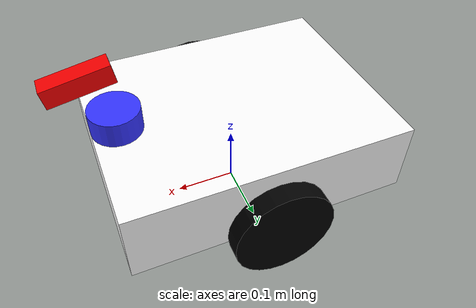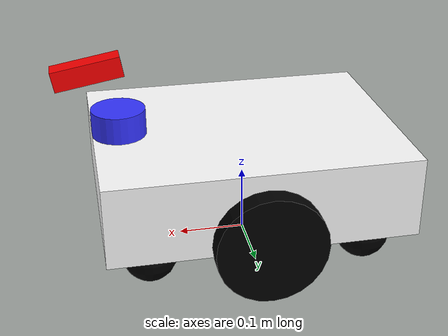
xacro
<?xml version="1.0"?>
<robot xmlns:xacro="http://www.ros.org/wiki/xacro" name="my_robot">

  <xacro:include filename="properties.urdf.xacro" />
  <xacro:include filename="materials.urdf.xacro" />
  <xacro:include filename="macros.urdf.xacro" />

  <xacro:include filename="base.urdf.xacro" />
  <xacro:include filename="wheels.urdf.xacro" />
  <xacro:include filename="sensors.urdf.xacro" />

  <xacro:include filename="gazebo.urdf.xacro" />

</robot>

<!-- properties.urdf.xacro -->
<robot xmlns:xacro="http://www.ros.org/wiki/xacro">

  <!-- BASE KHUNG XE -->
  <xacro:property name="base_length" value="0.45" />
  <xacro:property name="base_width" value="0.35" />
  <xacro:property name="base_height" value="0.12" />
  <xacro:property name="base_mass" value="5.0" />

  <!-- 2 BÁNH CHỦ ĐỘNG (NẰM NGAY GIỮA: X = 0) -->
  <xacro:property name="wheel_radius" value="0.08" />
  <xacro:property name="wheel_thickness" value="0.03" />
  <xacro:property name="wheel_mass" value="0.5" />
  <xacro:property name="wheel_offset_x" value="0.0" />
  <xacro:property name="wheel_offset_y" value="${base_width/2 + wheel_thickness/2 + 0.005}" />
  <xacro:property name="wheel_offset_z" value="-0.04" />

  <!-- 4 BÁNH CASTER WHEEL (2 TRƯỚC, 2 SAU) -->
  <xacro:property name="caster_radius" value="0.04" />
  <xacro:property name="caster_mass" value="0.1" />
  <xacro:property name="caster_offset_x" value="0.16" />
  <xacro:property name="caster_offset_y" value="${base_width/2 - caster_radius - 0.02}" />
  <xacro:property name="caster_offset_z" value="-0.08" />

  <!-- CẢM BIẾN -->
  <xacro:property name="lidar_radius" value="0.04" />
  <xacro:property name="lidar_length" value="0.04" />
  <xacro:property name="camera_size" value="0.03" />

</robot>

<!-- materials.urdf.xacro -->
<robot xmlns:xacro="http://www.ros.org/wiki/xacro">
  <material name="white">
    <color rgba="1 1 1 1"/>
  </material>

  <material name="black">
    <color rgba="0 0 0 1"/>
  </material>

  <material name="blue">
    <color rgba="0.2 0.2 1 1"/>
  </material>

  <material name="red">
    <color rgba="1 0 0 1"/>
  </material>
</robot>

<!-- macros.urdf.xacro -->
<robot xmlns:xacro="http://www.ros.org/wiki/xacro">

<!-- This file contains macros for defining inertial properties of different shapes -->

  <!-- BASE -->
  <xacro:macro name="inertial_box" params="mass x y z *origin">
    <inertial>
      <xacro:insert_block name="origin" />
      <mass value="${mass}" />
      <inertia ixx="${(1/12) * mass * (y*y + z*z)}" ixy="0.0" ixz="0.0"
               iyy="${(1/12) * mass * (x*x + z*z)}" iyz="0.0"
               izz="${(1/12) * mass * (x*x + y*y)}" />
    </inertial>
  </xacro:macro>

  <!-- CYLINDER WHEEL -->
  <xacro:macro name="inertial_cylinder" params="mass radius length *origin">
    <inertial>
      <xacro:insert_block name="origin" />
      <mass value="${mass}" />
      <inertia ixx="${(1/12) * mass * (3*radius*radius + length*length)}" ixy="0.0" ixz="0.0"
               iyy="${(1/12) * mass * (3*radius*radius + length*length)}" iyz="0.0"
               izz="${(1/2) * mass * (radius*radius)}" />
    </inertial>
  </xacro:macro>

  <!-- CASTER WHEEL -->
  <xacro:macro name="inertial_sphere" params="mass radius *origin">
    <inertial>
      <xacro:insert_block name="origin" />
      <mass value="${mass}" />
      <inertia ixx="${(2/5) * mass * (radius*radius)}" ixy="0.0" ixz="0.0"
               iyy="${(2/5) * mass * (radius*radius)}" iyz="0.0"
               izz="${(2/5) * mass * (radius*radius)}" />
    </inertial>
  </xacro:macro>

</robot>

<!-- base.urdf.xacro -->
<robot xmlns:xacro="http://www.ros.org/wiki/xacro">

  <link name="base_footprint"/>

  <!-- Nâng base_link lên 0.12m so với mặt sàn tiếp đất -->
  <joint name="base_joint" type="fixed">
    <parent link="base_footprint"/>
    <child link="base_link"/>
    <origin xyz="0 0 0.12" rpy="0 0 0"/>
  </joint>

  <link name="base_link">
    <visual>
      <origin xyz="0 0 0" rpy="0 0 0"/>
      <geometry>
        <box size="${base_length} ${base_width} ${base_height}"/>
      </geometry>
      <material name="white"/>
    </visual>
    <collision>
      <origin xyz="0 0 0" rpy="0 0 0"/>
      <geometry>
        <box size="${base_length} ${base_width} ${base_height}"/>
      </geometry>
    </collision>
    <xacro:inertial_box mass="${base_mass}" x="${base_length}" y="${base_width}" z="${base_height}">
      <origin xyz="0 0 0" rpy="0 0 0"/>
    </xacro:inertial_box>
  </link>

  <gazebo reference="base_link">
    <material>Gazebo/White</material>
  </gazebo>

</robot>

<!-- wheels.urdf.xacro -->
<robot xmlns:xacro="http://www.ros.org/wiki/xacro">

  <!-- ==================== MACRO BÁNH CHỦ ĐỘNG ==================== -->
  <xacro:macro name="wheel" params="prefix offset_y">
    <link name="${prefix}_wheel">
      <visual>
        <geometry>
          <cylinder radius="${wheel_radius}" length="${wheel_thickness}"/>
        </geometry>
        <material name="black"/>
      </visual>
      <collision>
        <geometry>
          <cylinder radius="${wheel_radius}" length="${wheel_thickness}"/>
        </geometry>
      </collision>
      <xacro:inertial_cylinder mass="${wheel_mass}" radius="${wheel_radius}" length="${wheel_thickness}">
        <origin xyz="0 0 0" rpy="0 0 0"/>
      </xacro:inertial_cylinder>
    </link>

    <!-- Cố định bánh xe nằm ngay tâm robot -->
    <joint name="${prefix}_wheel_joint" type="continuous">
      <parent link="base_link"/>
      <child link="${prefix}_wheel"/>
      <origin xyz="0.0 ${offset_y} ${wheel_offset_z}" rpy="${-pi/2} 0 0"/>
      <axis xyz="0 0 1"/>
    </joint>

    <gazebo reference="${prefix}_wheel">
      <material>Gazebo/DarkGrey</material>
      <!-- Ma sát bám đường thực tế cho bánh cao su -->
      <mu1 value="2.0"/>
      <mu2 value="2.0"/>
      <kp value="10000000.0"/>
      <kd value="1.0"/>
      <fdir1 value="1 0 0"/>
      <minDepth>0.001</minDepth>
    </gazebo>
  </xacro:macro>

  <!-- GỌI 2 BÁNH CHỦ ĐỘNG  -->
  <xacro:wheel prefix="left" offset_y="${wheel_offset_y}" />
  <xacro:wheel prefix="right" offset_y="${-wheel_offset_y}" />

  <!-- ==================== MACRO CASTER WHEEL ==================== -->
  <xacro:macro name="caster" params="prefix offset_x offset_y">
    <link name="${prefix}_caster_wheel">
      <visual>
        <geometry>
          <sphere radius="${caster_radius}"/>
        </geometry>
        <material name="black"/>
      </visual>
      <collision>
        <geometry>
          <sphere radius="${caster_radius}"/>
        </geometry>
      </collision>
      <xacro:inertial_sphere mass="${caster_mass}" radius="${caster_radius}">
        <origin xyz="0 0 0" rpy="0 0 0"/>
      </xacro:inertial_sphere>
    </link>

    <joint name="${prefix}_caster_joint" type="fixed">
      <parent link="base_link"/>
      <child link="${prefix}_caster_wheel"/>
      <origin xyz="${offset_x} ${offset_y} ${caster_offset_z}" rpy="0 0 0"/>
    </joint>

    <gazebo reference="${prefix}_caster_wheel">
      <material>Gazebo/Black</material>
      <!-- Triệt tiêu hoàn toàn ma sát để trượt như trên băng -->
      <mu1 value="0.0001"/>
      <mu2 value="0.0001"/>
      <kp value="1000000.0"/>
      <kd value="1.0"/>
      <minDepth>0.001</minDepth>
    </gazebo>
  </xacro:macro>

  <!-- 4 BÁNH PHỤ CASTER (2 TRƯỚC, 2 SAU) -->
  <xacro:caster prefix="front_left" offset_x="${caster_offset_x}" offset_y="${caster_offset_y}" />
  <xacro:caster prefix="front_right" offset_x="${caster_offset_x}" offset_y="${-caster_offset_y}" />
  <xacro:caster prefix="rear_left" offset_x="${-caster_offset_x}" offset_y="${caster_offset_y}" />
  <xacro:caster prefix="rear_right" offset_x="${-caster_offset_x}" offset_y="${-caster_offset_y}" />

</robot>

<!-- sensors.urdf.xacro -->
<robot xmlns:xacro="http://www.ros.org/wiki/xacro">

  <!-- ==================== LIDAR ==================== -->
  <link name="lidar_link">
    <visual>
      <geometry>
        <cylinder radius="${lidar_radius}" length="${lidar_length}"/>
      </geometry>
      <material name="blue"/>
    </visual>
    <collision>
      <geometry>
        <cylinder radius="${lidar_radius}" length="${lidar_length}"/>
      </geometry>
    </collision>
    <xacro:inertial_cylinder mass="0.1" radius="${lidar_radius}" length="${lidar_length}">
      <origin xyz="0 0 0" rpy="0 0 0"/>
    </xacro:inertial_cylinder>
  </link>

  <joint name="lidar_joint" type="fixed">
    <parent link="base_link"/>
    <child link="lidar_link"/>
    <origin xyz="${base_length/2 - lidar_radius} 0 ${base_height/2 + lidar_length/2}" rpy="0 0 3.141592653589793"/>
  </joint>

  <!-- ==================== DEPTH CAMERA ==================== -->
  <link name="depth_camera_link">
    <visual>
      <geometry>
        <box size="0.1 ${camera_size} ${camera_size}"/>
      </geometry>
      <material name="red"/>
    </visual>
    <collision>
      <geometry>
        <box size="0.1 ${camera_size} ${camera_size}"/>
      </geometry>
    </collision>
    <xacro:inertial_box mass="0.05" x="0.1" y="${camera_size}" z="${camera_size}">
      <origin xyz="0 0 0" rpy="0 0 0"/>
    </xacro:inertial_box>
  </link>

  <joint name="depth_camera_joint" type="fixed">
    <parent link="base_link"/>
    <child link="depth_camera_link"/>
    <!-- Pitch xuống tổng 40 độ (0.698132 rad) quanh trục Y. -->
    <origin xyz="${base_length/2} 0 ${base_height/2 + 0.1}" rpy="0 0.17453 0"/>
  </joint>

  <!-- Optical Frame: Chuẩn tọa độ quang học (Z tới, X phải, Y xuống) -->
  <link name="depth_camera_optical_frame"/>

  <joint name="depth_camera_optical_joint" type="fixed">
    <parent link="depth_camera_link"/>
    <child link="depth_camera_optical_frame"/>
    <origin xyz="0 0 0" rpy="-1.5707963 0 -1.5707963"/>
  </joint>

  <!-- ==================== GAZEBO MATERIAL COLORS ==================== -->
  <gazebo reference="depth_camera_link">
    <material>Gazebo/Red</material>
  </gazebo>

  <gazebo reference="lidar_link">
    <material>Gazebo/Blue</material>
  </gazebo>

</robot>
